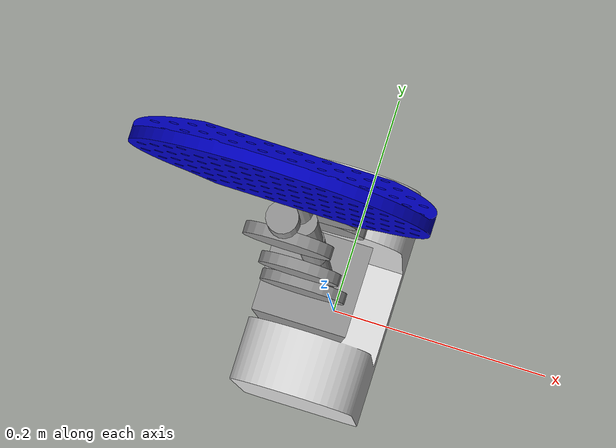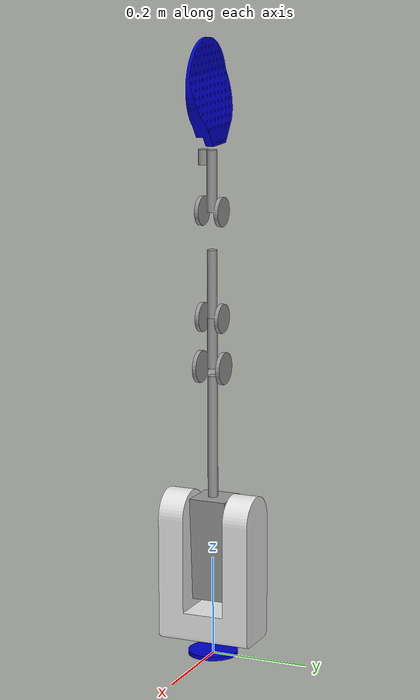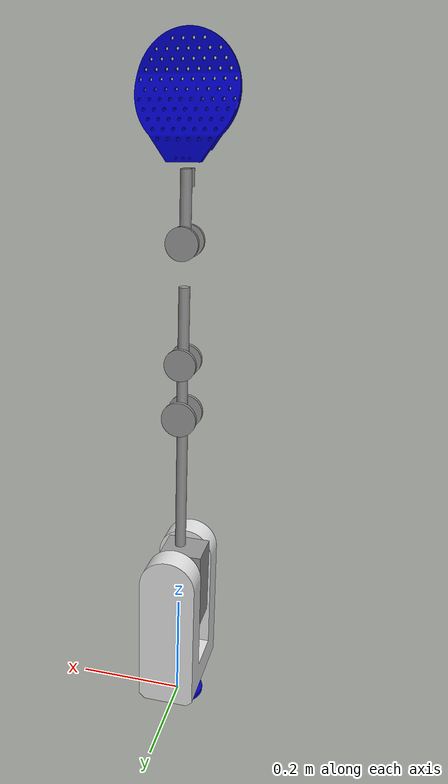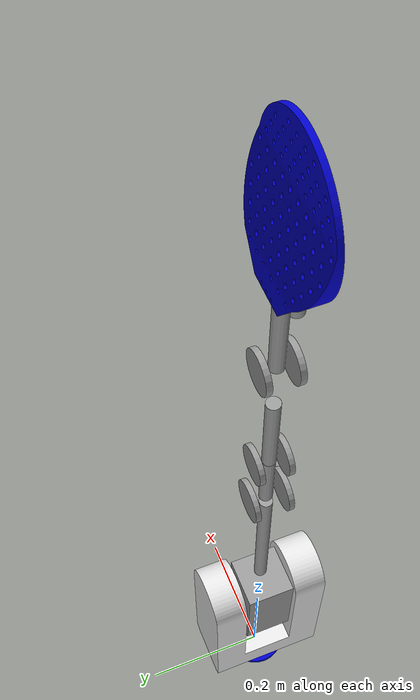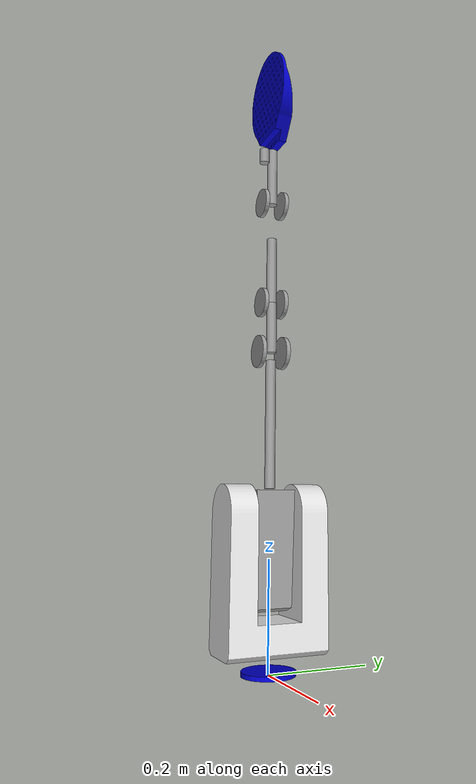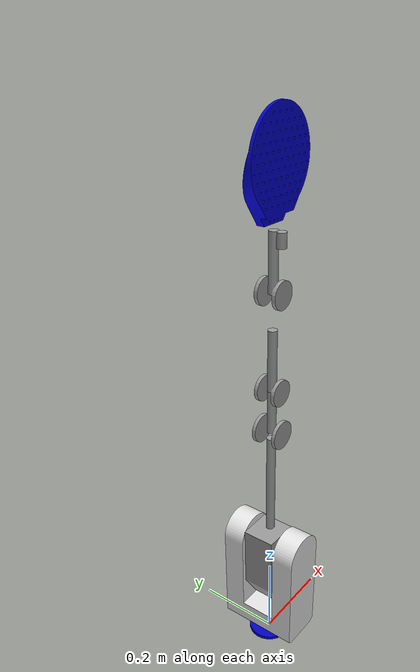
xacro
<?xml version="1.0"?>

<robot name="x6" xmlns:xacro="http://www.ros.org/wiki/xacro">

    <!-- Included URDF Files -->
    <include filename="$(find x6_description)/urdf/x6/x6_base.urdf.xacro" />
    <link name="base">
      <inertial>
    	<mass value="10" />
	<origin xyz="0.0 0.0 0.0" rpy="0 0 0" />
	<inertia ixx="0.001" ixy="0.0" ixz="0.0"
	  iyy="0.001" iyz="0.0"
	  izz="0.001" />
	</inertial>

  </link>
  <!-- Used for fixing robot to Gazebo 'base_link' -->
  <link name="world"/>

  <joint name="fixed" type="fixed">
    <parent link="world"/>
    <child link="base"/>
  </joint>

    <x6_arm parent="base" >
        <origin xyz="0 0 0" rpy="0 0 0"/>
    </x6_arm>
    <gazebo>
  	<plugin name="gazebo_ros_control" filename="libgazebo_ros_control.so">
    	<robotNamespace>/x6</robotNamespace>
  	</plugin>
    </gazebo>
</robot>

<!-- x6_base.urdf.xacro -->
<robot name="x6" xmlns:xacro="http://www.ros.org/wiki/xacro">

  <xacro:property name="base_height" value=".008"/>
  <xacro:property name="base_radius" value=".05"/>
  <xacro:property name="j1_length" value=".276"/>
  <!--0.284 to base plate-->
  <xacro:property name="j2_length" value=".307"/>
  <xacro:property name="j3_length" value=".130"/>
  <xacro:property name="j4_length" value=".181"/>
  <xacro:property name="j5_length" value=".126"/>
  <xacro:property name="j5_offset" value=".018"/>
  <xacro:property name="j6_length" value=".012"/>
  <xacro:property name="pi" value="3.1415926536"/>

  <xacro:macro name="default_inertial" params="mass">
    <inertial>
      <mass value="${mass}"/>
      <origin xyz="0.0 0.0 0.0" rpy="0 0 0"/>
      <inertia ixx="0.001" ixy="0.0" ixz="0.0" iyy="0.001" iyz="0.0" izz="0.001"/>
    </inertial>
  </xacro:macro>

   <xacro:macro name="racket_inertial" params="mass">
    <inertial>
      <mass value="${mass}"/>
      <origin xyz="0.0 0.0 0.0" rpy="0 0 0"/>
      <inertia ixx="0.001" ixy="0.0" ixz="0.0" iyy="0.001" iyz="0.0" izz="0.1"/>
    </inertial>
  </xacro:macro>

  <macro name="x6_arm" params="parent *origin">
    <link name="x6_base_link">
      <visual>
        <geometry>
          <cylinder radius="${base_radius}" length="${base_height}"/>
        </geometry>
        <origin xyz="0 0 ${base_height/2}" rpy="0 0 0"/>
        <material name="blue">
          <color rgba="0 0 .8 1"/>
        </material>
      </visual>
      <collision>
        <geometry>
          <cylinder radius="${base_radius}" length="${base_height}"/>
        </geometry>
        <origin xyz="0 0 ${base_height/2}" rpy="0 0 0"/>
      </collision>
      <xacro:default_inertial mass="0.1"/>
    </link>
    <gazebo reference="x6_base_link">
      <selfCollide>true</selfCollide>
      <material>x6_material/Grey</material>
    </gazebo>
    <link name="x6_link1">
      <visual>
        <geometry>
          <mesh filename="package://x6_description/meshes/x6_common/x6_link_1.dae"/>
        </geometry>
        <origin xyz="0 0 ${-base_height}" rpy="0 0 ${pi/2}"/>
        <material name="green">
          <color rgba="0.9 0.9 0.9 1"/>
        </material>
      </visual>
      <collision>
        <geometry>
          <mesh filename="package://x6_description/meshes/x6_common/x6_link_1.stl"/>
        </geometry>
        <origin xyz="0 0 ${-base_height}" rpy="0 0 ${pi/2}"/>
      </collision>
      <xacro:default_inertial mass="3"/>
    </link>
    <gazebo reference="x6_link1">
      <selfCollide>true</selfCollide>
      <material>x6_material/White</material>
    </gazebo>
    <link name="x6_link2">
      <visual>
        <geometry>
          <mesh filename="package://x6_description/meshes/x6_common/x6_link_2.dae"/>
        </geometry>
        <origin xyz="0 0 0" rpy="0 ${pi/2} ${pi}"/>
        <material name="red">
          <color rgba="0.6 0.6 0.6 1"/>
        </material>
      </visual>
      <collision>
        <geometry>
          <mesh filename="package://x6_description/meshes/x6_common/x6_link_2.stl"/>
        </geometry>
        <origin xyz="0 0 0" rpy="0 ${pi/2} ${pi}"/>
      </collision>
      <xacro:default_inertial mass="0.5"/>
    </link>
    <gazebo reference="x6_link2">
      <selfCollide>true</selfCollide>
      <material>x6_material/Grey</material>
    </gazebo>
    <link name="x6_link3">
      <visual>
        <geometry>
          <mesh filename="package://x6_description/meshes/x6/x6_link_3.dae"/>
        </geometry>
        <origin xyz="0 0 0" rpy="${pi/2} 0 ${pi/2}"/>
        <material name="red">

                </material>
      </visual>
      <collision>
        <geometry>
          <mesh filename="package://x6_description/meshes/x6/x6_link_3.stl"/>
        </geometry>
        <origin xyz="0 0 0" rpy="${pi/2} 0 ${pi/2}"/>
      </collision>
      <xacro:default_inertial mass="0.1"/>
    </link>
    <gazebo reference="x6_link3">
      <selfCollide>true</selfCollide>
      <material>x6_material/Grey</material>
    </gazebo>
    <link name="x6_link4">
      <visual>
        <geometry>
          <mesh filename="package://x6_description/meshes/x6/x6_link_4.dae"/>
        </geometry>
        <origin xyz="0 0 ${-j3_length + 0.03}" rpy="${pi} 0 0"/>
        <material name="red">

                </material>
      </visual>
      <collision>
        <geometry>
          <mesh filename="package://x6_description/meshes/x6/x6_link_4.stl"/>
        </geometry>
        <origin xyz="0 0 ${-j3_length + 0.03}" rpy="${pi} 0 0"/>

      </collision>
      <xacro:default_inertial mass="0.01"/>
    </link>
    <gazebo reference="x6_link5">
      <selfCollide>true</selfCollide>
      <material>x6_material/Grey</material>
    </gazebo>
    <link name="x6_link5">
      <visual>
        <geometry>
          <mesh filename="package://x6_description/meshes/x6_common/x6_link_4_0120.dae"/>
        </geometry>
        <origin xyz="0 0 0" rpy="${-pi/2} 0 0"/>
        <material name="red">

                </material>
      </visual>
      <collision>
        <geometry>
          <mesh filename="package://x6_description/meshes/x6_common/x6_link_4_0120.stl"/>
        </geometry>
        <origin xyz="0 0 0" rpy="${-pi/2} 0 0"/>
      </collision>
      <xacro:default_inertial mass="0.01"/>
    </link>
    <gazebo reference="x6_link5">
      <selfCollide>true</selfCollide>
      <material>x6_material/Grey</material>
    </gazebo>
    <link name="x6_link6">
      <visual>
        <geometry>
          <mesh filename="package://x6_description/meshes/x6/x6_link_6.dae"/>
        </geometry>
        <origin xyz="0 0 -0.036" rpy="0 0 0"/>
        <material name="red">

      </material>
      </visual>
      <collision>
        <geometry>
          <mesh filename="package://x6_description/meshes/x6/x6_link_6.stl"/>
        </geometry>
        <origin xyz="0 0 -0.036" rpy="0 0 0"/>
      </collision>
      <xacro:default_inertial mass="0.01"/>
    </link>
    <gazebo reference="x6_link6">
      <selfCollide>true</selfCollide>
      <material>x6_material/Grey</material>
    </gazebo>

    <link name="x6_toolframe">
      <visual>
        <geometry>
          <mesh filename="package://x6_description/meshes/x6_common/x6_rot_racket.dae"/>
        </geometry>
	<origin xyz="-0.0015 0 0.01" rpy="0 -${pi/2} ${pi}"/>
        <material name="blue">
          <color rgba="0 0 .8 1"/>
        </material>
      </visual>
      <collision>
        <geometry>
          <cylinder radius="0.08" length="0.01" />
        </geometry>
	<origin xyz="-0.0215 0 0.01" rpy="0 0 0"/>

        <surface>
      <bounce restitution_coefficient="1.0" threshold="0.01"/>
          <contact>
            <ode>
              <kp>1e20</kp>
              <kd>0.0</kd>
            </ode>
          </contact>
        </surface>

      </collision>
      <xacro:default_inertial mass="0.01"/>
    </link>
     <gazebo reference="x6_toolframe">
      <selfCollide>true</selfCollide>
      <material>Gazebo/Grey</material>
    </gazebo>

    <joint name="x6_base_joint" type="fixed">
      <insert_block name="origin"/>
      <parent link="${parent}"/>
      <child link="x6_base_link"/>
    </joint>
    <joint name="joint1" type="revolute">
      <parent link="x6_base_link"/>
      <child link="x6_link1"/>
      <axis xyz="0 0 1"/>
      <origin xyz="0 0 ${base_height}"/>
      <limit effort="50.0" lower="-2.53" upper="2.53" velocity="2.617"/>
      <!-- TODO: give correct effort limits -->
      <dynamics damping="1.0" friction="1.0"/>
    </joint>
    <joint name="joint2" type="revolute">
      <parent link="x6_link1"/>
      <child link="x6_link2"/>
      <axis xyz="0 0 1"/>
      <origin xyz="0 0 ${j1_length}" rpy="${pi/2} 0 0"/>
      <limit effort="50.0" lower="-2.181" upper="2.0071" velocity="2.617"/>
      <dynamics damping="1.0" friction="1.0"/>
    </joint>
    <joint name="joint3" type="revolute">
      <parent link="x6_link2"/>
      <child link="x6_link3"/>
      <axis xyz="0 0 1 "/>
      <origin xyz="0 ${j2_length} 0" rpy="0 0 ${pi/2}"/>
      <limit effort="30.0" lower="-2.007" upper="2.007" velocity="2.617"/>
      <dynamics damping="1.0" friction="1.0"/>
    </joint>
    <joint name="joint4" type="revolute">
      <parent link="x6_link3"/>
      <child link="x6_link4"/>
      <axis xyz="0 0 1"/>
      <origin xyz="0 0 0.0" rpy="${pi/2} 0 ${-pi/2}"/>
      <limit effort="30.0" lower="-1.83" upper="1.83" velocity="2.617"/>
      <!-- TODO: give correct effort limits -->
      <dynamics damping="1.0" friction="1.0"/>
    </joint>
    <!-- fixed because of Robot malfunction -->
    <joint name="joint5" type="revolute">
      <parent link="x6_link4"/>
      <child link="x6_link5"/>
      <axis xyz="0 0 1"/>
      <origin xyz="0 0 ${-j3_length - j4_length}" rpy="${-pi/2} 0 0"/>
      <limit effort="30.0" lower="-1.57" upper="1.57" velocity="2.617"/>
    </joint>
    <joint name="joint6" type="revolute">
      <parent link="x6_link5"/>
      <child link="x6_link6"/>
      <axis xyz="0 0 1"/>
      <origin xyz="0 ${j5_length} ${j5_offset}" rpy="${-pi/2} 0 0"/>
      <limit effort="10.0" lower="-1.57" upper="1.57" velocity="2.617"/>
      <!-- TODO: give correct effort limits -->
      <dynamics damping="1.0" friction="1.0"/>
    </joint>
    <joint name="tool_frame" type="fixed">
      <parent link="x6_link6"/>
      <child link="x6_toolframe"/>
      <axis xyz="0 0 1"/>
      <origin xyz="0 ${j6_length} 0.11" rpy="${pi} -${pi/2} ${3*pi/2}"/>
    </joint>

    <transmission name="joint1_trans">
      <type>transmission_interface/SimpleTransmission</type>
      <joint name="joint1">
        <hardwareInterface>EffortJointInterface</hardwareInterface>
      </joint>
      <actuator name="joint1_motor">
        <hardwareInterface>EffortJointInterface</hardwareInterface>
        <mechanicalReduction>1</mechanicalReduction>
      </actuator>
    </transmission>

    <transmission name="joint2_trans">
      <type>transmission_interface/SimpleTransmission</type>
      <joint name="joint2">
        <hardwareInterface>EffortJointInterface</hardwareInterface>
      </joint>
      <actuator name="joint2_motor">
        <hardwareInterface>EffortJointInterface</hardwareInterface>
        <mechanicalReduction>1</mechanicalReduction>
      </actuator>
    </transmission>

    <transmission name="joint3_trans">
      <type>transmission_interface/SimpleTransmission</type>
      <joint name="joint3">
        <hardwareInterface>EffortJointInterface</hardwareInterface>
      </joint>
      <actuator name="joint3_motor">
        <hardwareInterface>EffortJointInterface</hardwareInterface>
        <mechanicalReduction>1</mechanicalReduction>
      </actuator>
    </transmission>

    <transmission name="joint4_trans">
      <type>transmission_interface/SimpleTransmission</type>
      <joint name="joint4">
        <hardwareInterface>EffortJointInterface</hardwareInterface>
      </joint>
      <actuator name="joint4_motor">
        <hardwareInterface>EffortJointInterface</hardwareInterface>
        <mechanicalReduction>1</mechanicalReduction>
      </actuator>
    </transmission>

    <transmission name="joint5_trans">
      <type>transmission_interface/SimpleTransmission</type>
      <joint name="joint5">
        <hardwareInterface>EffortJointInterface</hardwareInterface>
      </joint>
      <actuator name="joint5_motor">
        <hardwareInterface>EffortJointInterface</hardwareInterface>
        <mechanicalReduction>1</mechanicalReduction>
      </actuator>
    </transmission>

    <transmission name="joint6_trans">
      <type>transmission_interface/SimpleTransmission</type>
      <joint name="joint6">
        <hardwareInterface>EffortJointInterface</hardwareInterface>
      </joint>
      <actuator name="joint6_motor">
        <hardwareInterface>EffortJointInterface</hardwareInterface>
        <mechanicalReduction>1</mechanicalReduction>
      </actuator>
    </transmission>

  </macro>
</robot>
